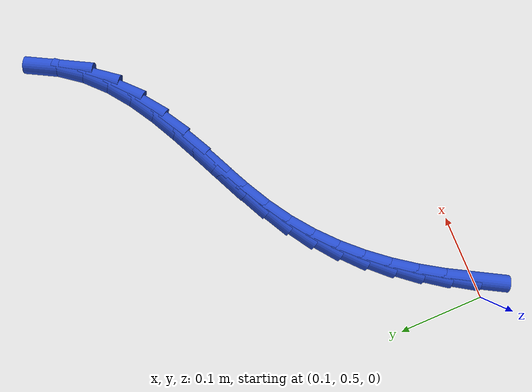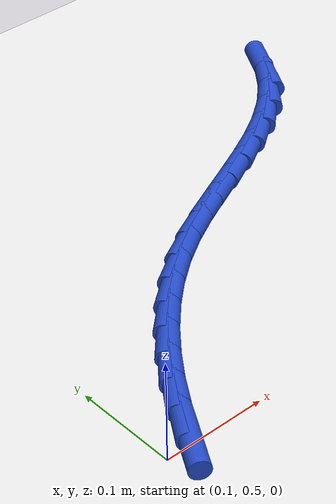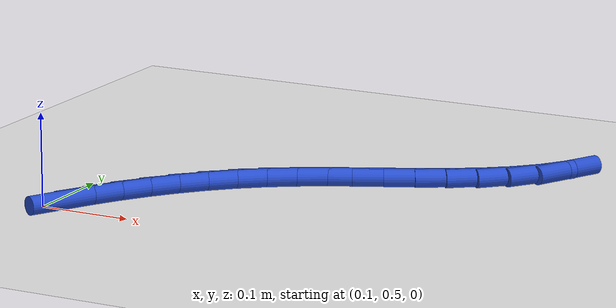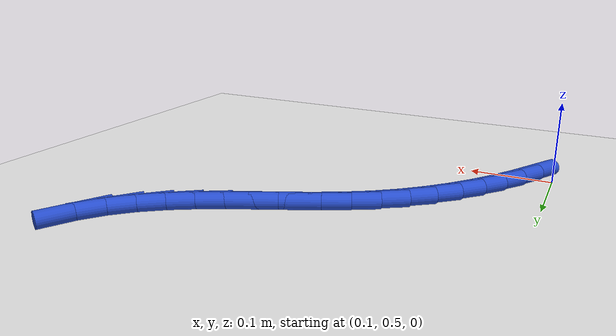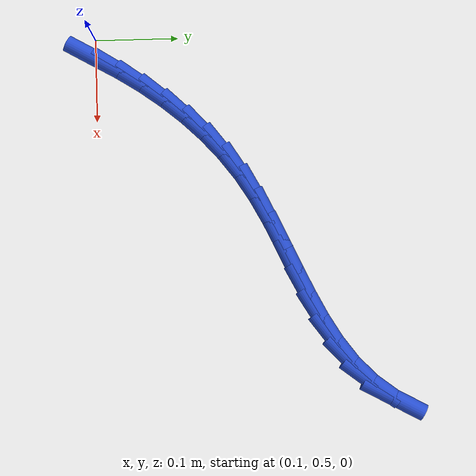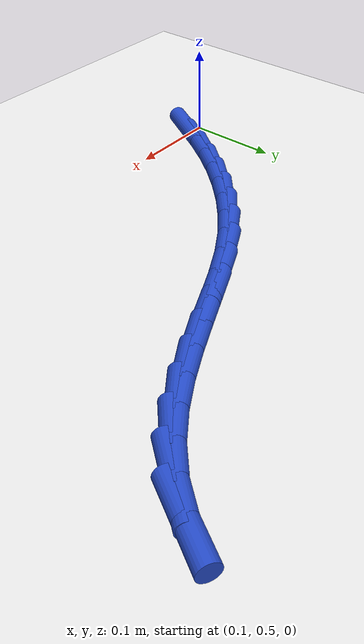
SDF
<sdf version="1.6">
 <world name="default">
  <model name="ground_plane">
   <static>1</static>
   <link name="link">
    <collision name="collision">
     <geometry><plane><normal>0 0 1</normal><size>100 100</size></plane></geometry>
     <surface><friction><ode><mu>100</mu><mu2>50</mu2></ode></friction></surface>
    </collision>
    <visual name="visual">
     <cast_shadows>0</cast_shadows>
     <geometry><plane><normal>0 0 1</normal><size>100 100</size></plane></geometry>
     <material>
      <script><uri>file://media/materials/scripts/gazebo.material</uri><name>Gazebo/WhiteGlow</name></script>
     </material>
    </visual>
   </link>
  </model>
  <model name="line">
   <link name="link_16">
    <pose>0.12423753229787945 0.5017558643366548 0.01 0 1.57 1.0522170919462064</pose>
    <collision name="collision">
     <geometry><cylinder><radius>0.01</radius><length>0.08</length></cylinder></geometry>
    </collision>
    <visual name="visual">
     <material>
      <script><name>Gazebo/Blue</name><uri>file://media/materials/scripts/gazebo.material</uri></script>
     </material>
     <geometry><cylinder><radius>0.01</radius><length>0.08</length></cylinder></geometry>
    </visual>
   </link>
   <link name="link_17">
    <pose>0.1404982327115083 0.530249574791072 0.01 0 1.57 0.9993986890427601</pose>
    <collision name="collision">
     <geometry><cylinder><radius>0.01</radius><length>0.08</length></cylinder></geometry>
    </collision>
    <visual name="visual">
     <material>
      <script><name>Gazebo/Blue</name><uri>file://media/materials/scripts/gazebo.material</uri></script>
     </material>
     <geometry><cylinder><radius>0.01</radius><length>0.08</length></cylinder></geometry>
    </visual>
   </link>
   <link name="link_18">
    <pose>0.15809677875186806 0.5576214707277295 0.01 0 1.57 0.9410538460700894</pose>
    <collision name="collision">
     <geometry><cylinder><radius>0.01</radius><length>0.08</length></cylinder></geometry>
    </collision>
    <visual name="visual">
     <material>
      <script><name>Gazebo/Blue</name><uri>file://media/materials/scripts/gazebo.material</uri></script>
     </material>
     <geometry><cylinder><radius>0.01</radius><length>0.08</length></cylinder></geometry>
    </visual>
   </link>
   <link name="link_19">
    <pose>0.17710769886865133 0.5837095568003254 0.01 0 1.57 0.8769546947000266</pose>
    <collision name="collision">
     <geometry><cylinder><radius>0.01</radius><length>0.08</length></cylinder></geometry>
    </collision>
    <visual name="visual">
     <material>
      <script><name>Gazebo/Blue</name><uri>file://media/materials/scripts/gazebo.material</uri></script>
     </material>
     <geometry><cylinder><radius>0.01</radius><length>0.08</length></cylinder></geometry>
    </visual>
   </link>
   <link name="link_20">
    <pose>0.19760552151155053 0.6083518376625577 0.01 0 1.57 0.807021449003432</pose>
    <collision name="collision">
     <geometry><cylinder><radius>0.01</radius><length>0.08</length></cylinder></geometry>
    </collision>
    <visual name="visual">
     <material>
      <script><name>Gazebo/Blue</name><uri>file://media/materials/scripts/gazebo.material</uri></script>
     </material>
     <geometry><cylinder><radius>0.01</radius><length>0.08</length></cylinder></geometry>
    </visual>
   </link>
   <link name="link_21">
    <pose>0.21966477513025834 0.6313863179681249 0.01 0 1.57 0.7313908101211046</pose>
    <collision name="collision">
     <geometry><cylinder><radius>0.01</radius><length>0.08</length></cylinder></geometry>
    </collision>
    <visual name="visual">
     <material>
      <script><name>Gazebo/Blue</name><uri>file://media/materials/scripts/gazebo.material</uri></script>
     </material>
     <geometry><cylinder><radius>0.01</radius><length>0.08</length></cylinder></geometry>
    </visual>
   </link>
   <link name="link_22">
    <pose>0.24335998817446725 0.652651002370725 0.01 0 1.57 0.6504829493605193</pose>
    <collision name="collision">
     <geometry><cylinder><radius>0.01</radius><length>0.08</length></cylinder></geometry>
    </collision>
    <visual name="visual">
     <material>
      <script><name>Gazebo/Blue</name><uri>file://media/materials/scripts/gazebo.material</uri></script>
     </material>
     <geometry><cylinder><radius>0.01</radius><length>0.08</length></cylinder></geometry>
    </visual>
   </link>
   <link name="link_23">
    <pose>0.26876568909386966 0.671983895524056 0.01 0 1.57 0.565586735130034</pose>
    <collision name="collision">
     <geometry><cylinder><radius>0.01</radius><length>0.08</length></cylinder></geometry>
    </collision>
    <visual name="visual">
     <material>
      <script><name>Gazebo/Blue</name><uri>file://media/materials/scripts/gazebo.material</uri></script>
     </material>
     <geometry><cylinder><radius>0.01</radius><length>0.08</length></cylinder></geometry>
    </visual>
   </link>
   <link name="link_24">
    <pose>0.2959456627580904 0.6892366464001525 0.01 0 1.57 0.49257284039773913</pose>
    <collision name="collision">
     <geometry><cylinder><radius>0.01</radius><length>0.08</length></cylinder></geometry>
    </collision>
    <visual name="visual">
     <material>
      <script><name>Gazebo/Blue</name><uri>file://media/materials/scripts/gazebo.material</uri></script>
     </material>
     <geometry><cylinder><radius>0.01</radius><length>0.08</length></cylinder></geometry>
    </visual>
   </link>
   <link name="link_25">
    <pose>0.3246594657160109 0.7046472731355861 0.01 0 1.57 0.4474584122082323</pose>
    <collision name="collision">
     <geometry><cylinder><radius>0.01</radius><length>0.08</length></cylinder></geometry>
    </collision>
    <visual name="visual">
     <material>
      <script><name>Gazebo/Blue</name><uri>file://media/materials/scripts/gazebo.material</uri></script>
     </material>
     <geometry><cylinder><radius>0.01</radius><length>0.08</length></cylinder></geometry>
    </visual>
   </link>
   <link name="link_26">
    <pose>0.3543268352935273 0.7188853633833977 0.01 0 1.57 0.42969119533140737</pose>
    <collision name="collision">
     <geometry><cylinder><radius>0.01</radius><length>0.08</length></cylinder></geometry>
    </collision>
    <visual name="visual">
     <material>
      <script><name>Gazebo/Blue</name><uri>file://media/materials/scripts/gazebo.material</uri></script>
     </material>
     <geometry><cylinder><radius>0.01</radius><length>0.08</length></cylinder></geometry>
    </visual>
   </link>
   <link name="link_27">
    <pose>0.3843496197321301 0.7326432238866161 0.01 0 1.57 0.438626696507426</pose>
    <collision name="collision">
     <geometry><cylinder><radius>0.01</radius><length>0.08</length></cylinder></geometry>
    </collision>
    <visual name="visual">
     <material>
      <script><name>Gazebo/Blue</name><uri>file://media/materials/scripts/gazebo.material</uri></script>
     </material>
     <geometry><cylinder><radius>0.01</radius><length>0.08</length></cylinder></geometry>
    </visual>
   </link>
   <link name="link_28">
    <pose>0.4141296672733101 0.7466131613882702 0.01 0 1.57 0.4747736686174871</pose>
    <collision name="collision">
     <geometry><cylinder><radius>0.01</radius><length>0.08</length></cylinder></geometry>
    </collision>
    <visual name="visual">
     <material>
      <script><name>Gazebo/Blue</name><uri>file://media/materials/scripts/gazebo.material</uri></script>
     </material>
     <geometry><cylinder><radius>0.01</radius><length>0.08</length></cylinder></geometry>
    </visual>
   </link>
   <link name="link_29">
    <pose>0.4430688261585577 0.7614874826313882 0.01 0 1.57 0.5396421532841285</pose>
    <collision name="collision">
     <geometry><cylinder><radius>0.01</radius><length>0.08</length></cylinder></geometry>
    </collision>
    <visual name="visual">
     <material>
      <script><name>Gazebo/Blue</name><uri>file://media/materials/scripts/gazebo.material</uri></script>
     </material>
     <geometry><cylinder><radius>0.01</radius><length>0.08</length></cylinder></geometry>
    </visual>
   </link>
   <link name="link_30">
    <pose>0.47056894462936416 0.7779584943590002 0.01 0 1.57 0.6349720782764744</pose>
    <collision name="collision">
     <geometry><cylinder><radius>0.01</radius><length>0.08</length></cylinder></geometry>
    </collision>
    <visual name="visual">
     <material>
      <script><name>Gazebo/Blue</name><uri>file://media/materials/scripts/gazebo.material</uri></script>
     </material>
     <geometry><cylinder><radius>0.01</radius><length>0.08</length></cylinder></geometry>
    </visual>
   </link>
   <link name="link_31">
    <pose>0.4960318709272196 0.7967185033141339 0.01 0 1.57 0.7610301727500743</pose>
    <collision name="collision">
     <geometry><cylinder><radius>0.01</radius><length>0.08</length></cylinder></geometry>
    </collision>
    <visual name="visual">
     <material>
      <script><name>Gazebo/Blue</name><uri>file://media/materials/scripts/gazebo.material</uri></script>
     </material>
     <geometry><cylinder><radius>0.01</radius><length>0.08</length></cylinder></geometry>
    </visual>
   </link>
   <link name="link_32">
    <pose>0.5188594532936152 0.8184598162398186 0.01 0 1.57 0.9140103487601109</pose>
    <collision name="collision">
     <geometry><cylinder><radius>0.01</radius><length>0.08</length></cylinder></geometry>
    </collision>
    <visual name="visual">
     <material>
      <script><name>Gazebo/Blue</name><uri>file://media/materials/scripts/gazebo.material</uri></script>
     </material>
     <geometry><cylinder><radius>0.01</radius><length>0.08</length></cylinder></geometry>
    </visual>
   </link>
   <link name="link_33">
    <pose>0.5384535399700541 0.8438747398790668 0.01 0 1.57 1.070606124262095</pose>
    <collision name="collision">
     <geometry><cylinder><radius>0.01</radius><length>0.08</length></cylinder></geometry>
    </collision>
    <visual name="visual">
     <material>
      <script><name>Gazebo/Blue</name><uri>file://media/materials/scripts/gazebo.material</uri></script>
     </material>
     <geometry><cylinder><radius>0.01</radius><length>0.08</length></cylinder></geometry>
    </visual>
   </link>
  </model>
 </world>
</sdf>
